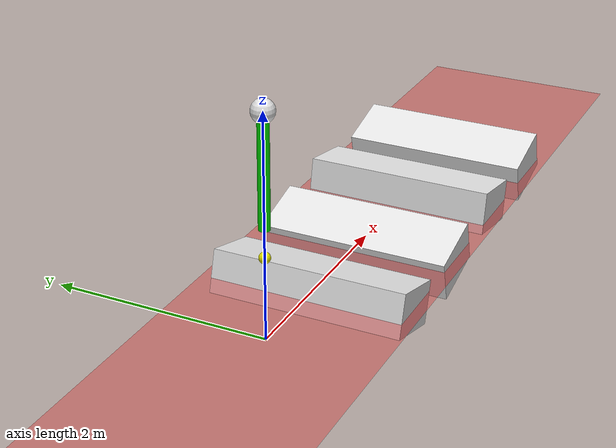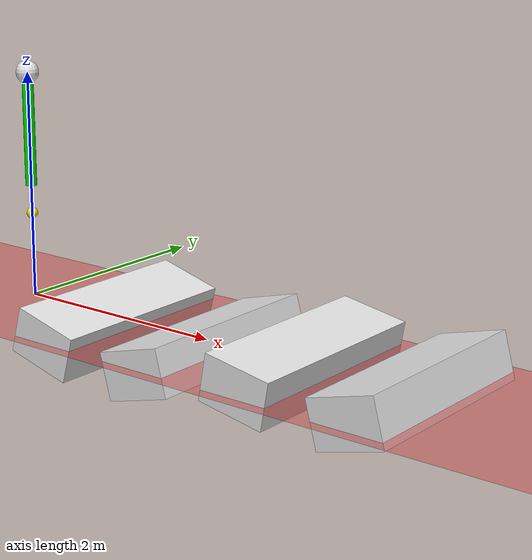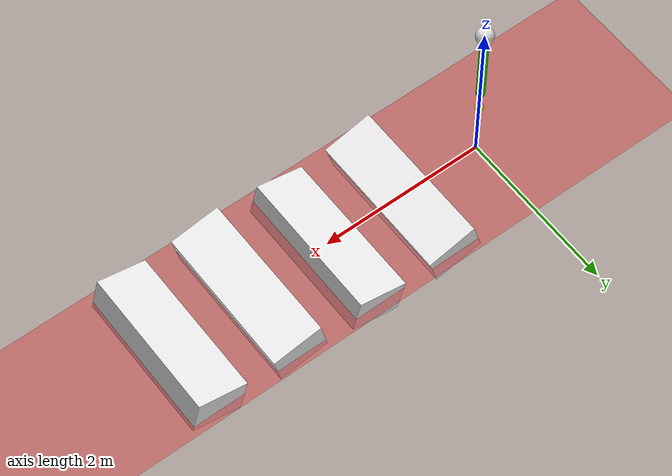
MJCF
<mujoco>
 <visual>
<headlight ambient="0.5 0.5 0.5"/>
 </visual>
	<option timestep="0.001" integrator="RK4" gravity="0 0 -9.81">
		<flag sensornoise="disable" contact="enable" energy="enable"/>
	</option>

	<worldbody>
		<geom type="plane" size="100 1 0.1" rgba=".9 0 0 1"/>
		<body name="floor" pos="1 0 -0.02" euler = "0 15 0">
			<geom type="box" size="0.3 0.9 0.2" rgba = "0.9 0.9 0.9 0.9"/>
		</body>
		<body name="floor_1" pos="2 0 -0.05" euler = "0 -15 0">
			<geom type="box" size="0.3 0.9 0.2" rgba = "0.9 0.9 0.9 0.9"/>
		</body>
		<body name="floor_2" pos="3 0 0.05" euler = "0 10 0">
			<geom type="box" size="0.3 0.9 0.2" rgba = "0.9 0.9 0.9 0.9"/>
		</body>
		<body name="floor_3" pos="4 0 0.05" euler = "0 -15 0">
			<geom type="box" size="0.3 0.9 0.2" rgba = "0.9 0.9 0.9 0.9"/>
		</body>

		<body name="torso" pos="0 0 2">
			<joint name="x" type="slide" pos="0 0 0" axis="1 0 0" />
			<joint name="z" type="slide" pos="0 0 0" axis="0 0 1" />
			<geom type="sphere" size="0.1" rgba=".9 .9 .9 1" mass="1"/>
			<body name="leg" pos="0 0 -0.5" euler="0 0 0">
				<joint name="hip" type="hinge" pos="0 0 0.5" axis="0 -1 0" />
				<geom type="cylinder" size=".05 .5" rgba="0 .9 0 1" mass="1"/>
				<body name="foot" pos="0 0 -0.75">
				<joint name="knee" type="slide" pos="0 0 0.25" axis="0 0 -1" />
				<geom type="cylinder" pos="0 0 0.125" size=".01 .125" rgba="0 0 .9 1" mass="0"/>
				<geom type="sphere" size="0.05" rgba=".9 .9 0 1" mass="0.1"/>
				</body>
			</body>
		</body>
	</worldbody>

	<actuator>
		<position name="pservo-hip" joint="hip" kp="0"/>
		<velocity name="vservo-hip" joint="hip" kv="0"/>
		<position name="pservo-knee" joint="knee" kp="0"/>
		<velocity name="vservo-knee" joint="knee" kv="0"/>
	</actuator>

</mujoco>
